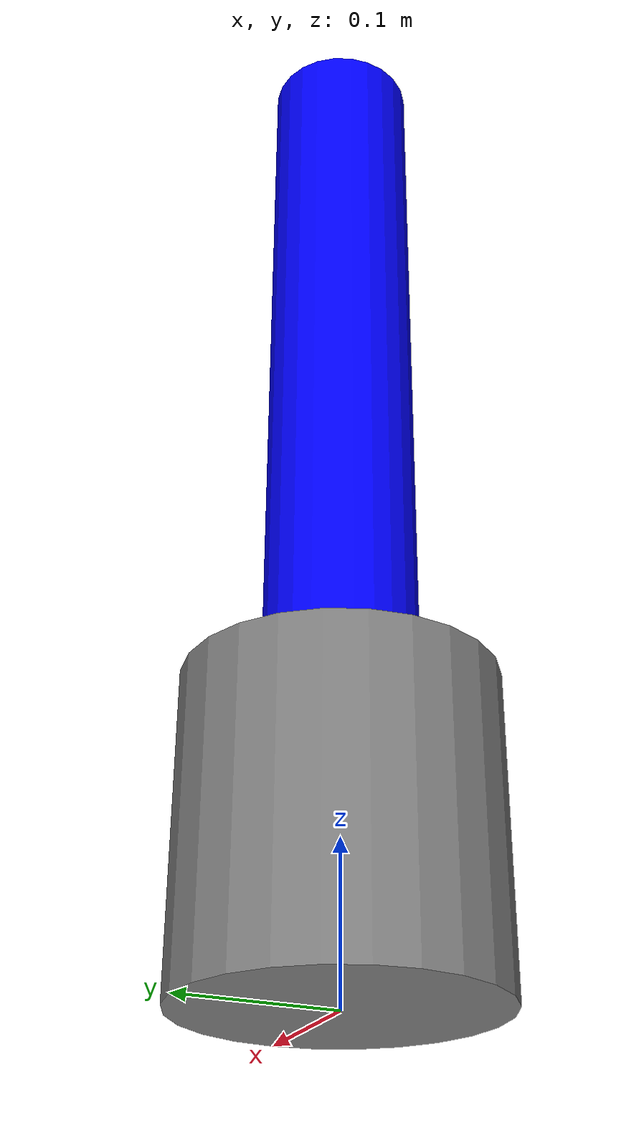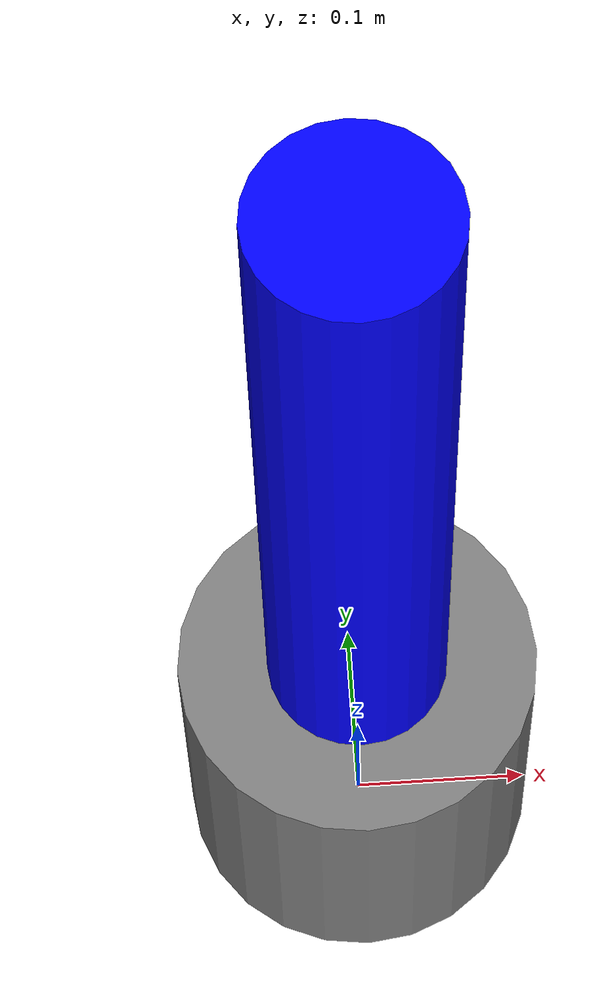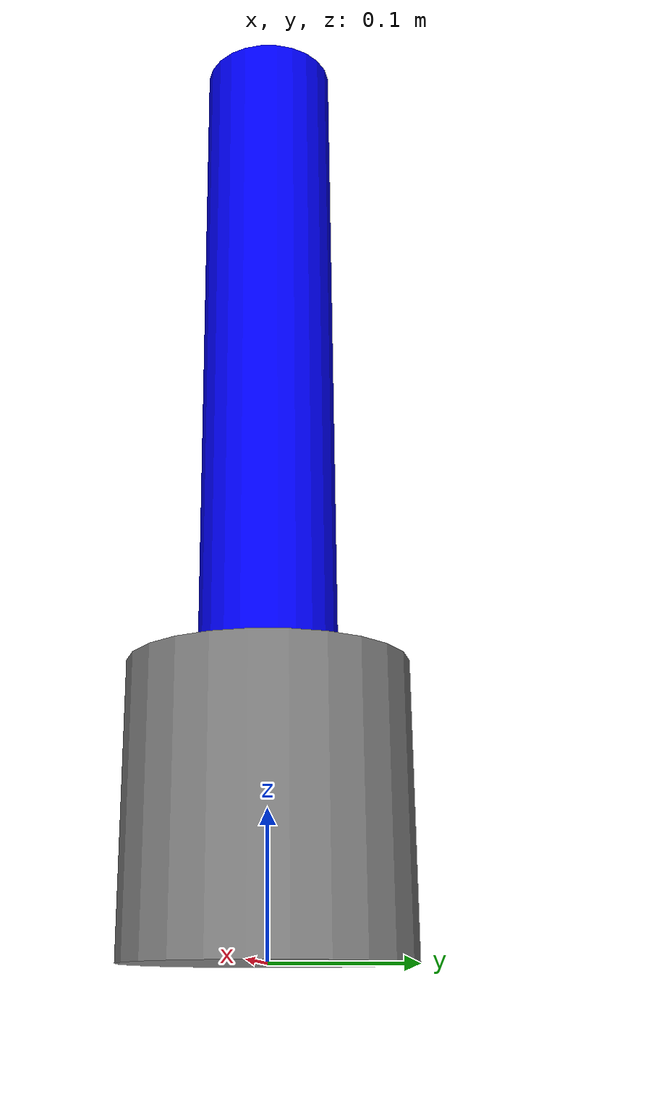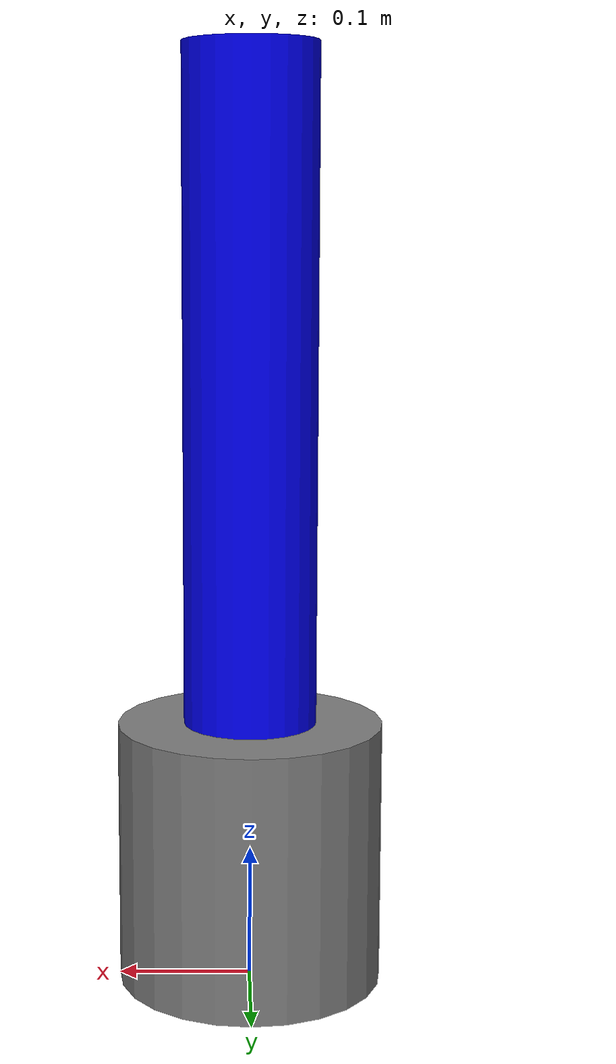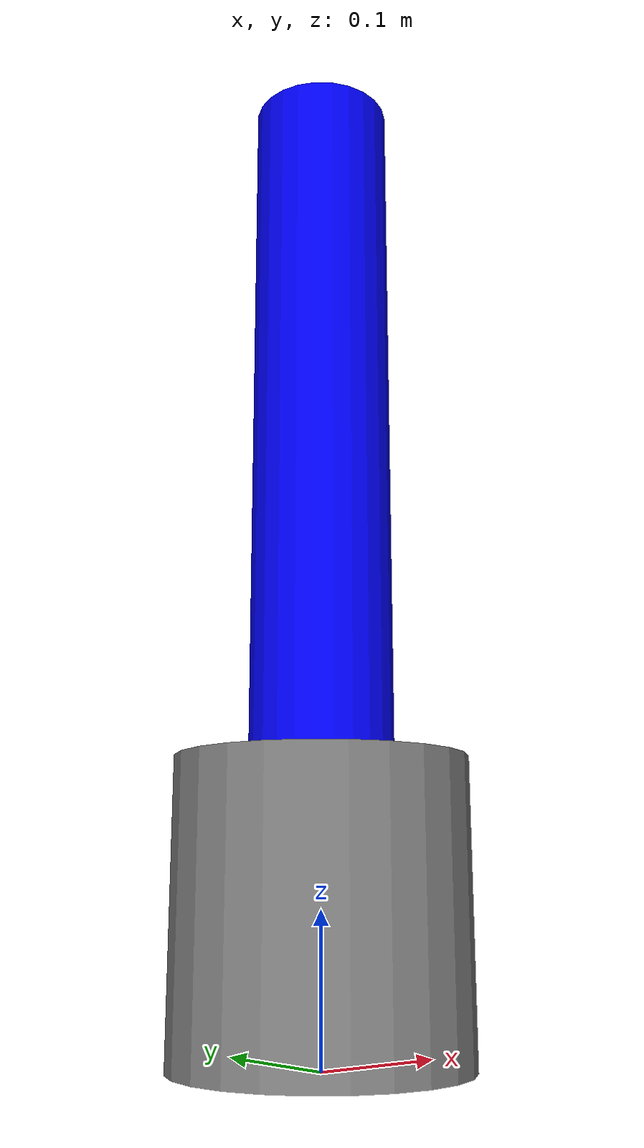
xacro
<?xml version="1.0"?>
<robot xmlns:xacro="http://www.ros.org/wiki/xacro" name="simple_manipulator">
    <!-- Define Arguments -->
    <xacro:arg name="prefix" default="" />
    <xacro:arg name="use_gazebo" default="false" />

    <link name="world"></link>

    <!-- Base Link -->
    <link name="base_link">
        <visual>
            <geometry>
                <cylinder radius="0.1" length="0.2"/>
            </geometry>
            <material name="gray">
                <color rgba="0.5 0.5 0.5 1"/>
            </material>
        </visual>
        <collision>
            <geometry>
                <cylinder radius="0.1" length="0.2"/>
            </geometry>
        </collision>
        <inertial>
            <mass value="2.0"/>
            <origin xyz="0 0 0.1"/>
            <inertia ixx="0.1" iyy="0.1" izz="0.1" ixy="0" ixz="0" iyz="0"/>
        </inertial>
    </link>

    <joint name="joint1" type="revolute">
        <parent link="world"/>
        <child link="base_link"/>
        <origin xyz="0 0 0.1" rpy="0 0 0"/>
        <axis xyz="0 0 1"/>
        <limit lower="-3.1416" upper="3.1416" effort="5" velocity="2"/>
    </joint>

    <link name="link1">
        <visual>
            <origin xyz="0 0 0.25"/>
            <geometry>
                <cylinder radius="0.05" length="0.5"/>
            </geometry>
            <material name="blue">
                <color rgba="0 0 1 1"/>
            </material>
        </visual>
        <collision>
            <origin xyz="0 0 0.25"/>
            <geometry>
                <cylinder radius="0.05" length="0.5"/>
            </geometry>
        </collision>
        <inertial>
            <mass value="1.0"/>
            <origin xyz="0 0 0.25"/>
            <inertia ixx="0.05" iyy="0.05" izz="0.05" ixy="0" ixz="0" iyz="0"/>
        </inertial>
    </link>

    <joint name="joint2" type="revolute">
        <parent link="base_link"/>
        <child link="link1"/>
        <origin xyz="0 0 0.1" rpy="0 0 0"/>
        <axis xyz="0 1 0"/>
        <limit lower="-1.5708" upper="1.5708" effort="5" velocity="2"/>
    </joint>

    <!-- ROS2 Control Section -->
    <ros2_control name="RobotSystemPositionManager" type="system">
        <hardware>
            <plugin>mock_components/GenericSystem</plugin>
        </hardware>
        <joint name="joint1">
            <command_interface name="position"/>
            <state_interface name="position"/>
            <state_interface name="velocity"/>
        </joint>
        <joint name="joint2">
            <command_interface name="position"/>
            <state_interface name="position"/>
            <state_interface name="velocity"/>
        </joint>
    </ros2_control>

    <!-- Transmission tags -->
    <transmission name="joint1_trans">
        <type>transmission_interface/SimpleTransmission</type>
        <joint name="joint1">
            <hardwareInterface>hardware_interface/PositionJointInterface</hardwareInterface>
        </joint>
        <actuator name="joint1_motor">
            <hardwareInterface>hardware_interface/PositionJointInterface</hardwareInterface>
        </actuator>
    </transmission>

    <transmission name="joint2_trans">
        <type>transmission_interface/SimpleTransmission</type>
        <joint name="joint2">
            <hardwareInterface>hardware_interface/PositionJointInterface</hardwareInterface>
        </joint>
        <actuator name="joint2_motor">
            <hardwareInterface>hardware_interface/PositionJointInterface</hardwareInterface>
        </actuator>
    </transmission>
</robot>
